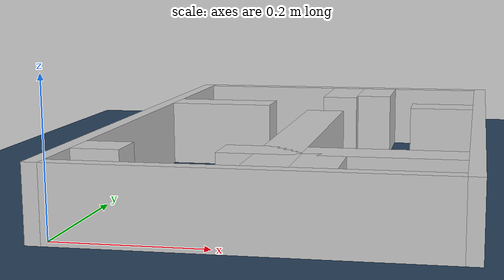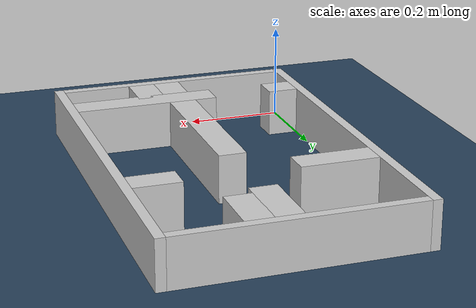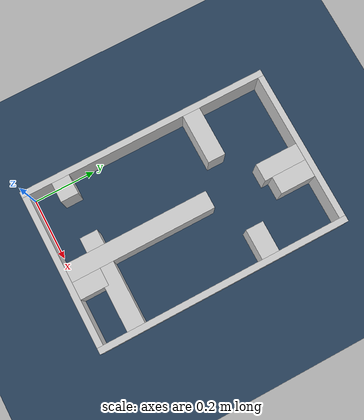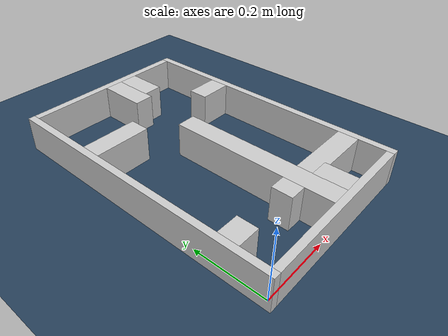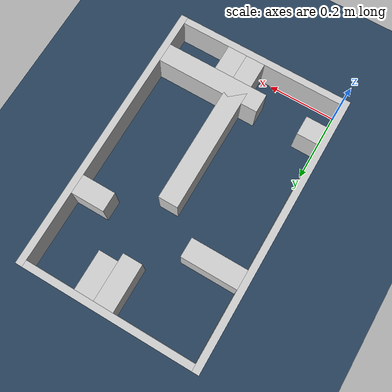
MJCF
<?xml version="1.0" ?>
<mujoco model="generated_real_template">
  <compiler angle="degree"/>
  <option timestep="0.002" integrator="implicitfast" iterations="100" cone="elliptic"/>
  <default>
    <geom density="1"/>
  </default>
  <asset>
    <texture builtin="gradient" height="3072" rgb1="0.3 0.5 0.7" rgb2="0 0 0" type="skybox" width="512"/>
    <texture builtin="checker" height="300" mark="edge" markrgb="0.8 0.8 0.8" name="groundplane" rgb1="0.2 0.3 0.4" rgb2="0.1 0.2 0.3" type="2d" width="300"/>
    <material name="groundplane" reflectance="0.2" texrepeat="5 5" texture="groundplane" texuniform="true"/>
  </asset>
  <worldbody>
    <light dir="0 0 -1" directional="true" pos="0 0 1.5"/>
    <geom name="floor" type="plane" condim="4" friction="0.5 0.005 0.001" material="groundplane" size="0 0 0.05"/>
    <body name="walls">
      <geom name="wall_boundary_left" type="box" condim="4" friction="1.0 0.005 0.0001" rgba="0.8 0.8 0.8 1" pos="-0.010000 0.387500 0.050000" euler="0 0 0.000000" size="0.010000 0.407500 0.050000"/>
      <geom name="wall_boundary_right" type="box" condim="4" friction="1.0 0.005 0.0001" rgba="0.8 0.8 0.8 1" pos="0.500000 0.387500 0.050000" euler="0 0 0.000000" size="0.010000 0.407500 0.050000"/>
      <geom name="wall_boundary_bottom" type="box" condim="4" friction="1.0 0.005 0.0001" rgba="0.8 0.8 0.8 1" pos="0.245000 -0.010000 0.050000" euler="0 0 0.000000" size="0.245000 0.010000 0.050000"/>
      <geom name="wall_boundary_top" type="box" condim="4" friction="1.0 0.005 0.0001" rgba="0.8 0.8 0.8 1" pos="0.245000 0.785000 0.050000" euler="0 0 0.000000" size="0.245000 0.010000 0.050000"/>
      <geom name="wall_inner_1_1" type="box" condim="4" friction="1.0 0.005 0.0001" rgba="0.8 0.8 0.8 1" pos="0.318242 0.045120 0.050000" euler="0 0 90.000000" size="0.045120 0.028500 0.050000"/>
      <geom name="wall_inner_1_2" type="box" condim="4" friction="1.0 0.005 0.0001" rgba="0.8 0.8 0.8 1" pos="0.318242 0.718150 0.050000" euler="0 0 90.000000" size="0.056850 0.028500 0.050000"/>
      <geom name="wall_inner_2_1" type="box" condim="4" friction="1.0 0.005 0.0001" rgba="0.8 0.8 0.8 1" pos="0.081227 0.544565 0.050000" euler="0 0 0.000000" size="0.081227 0.028500 0.050000"/>
      <geom name="wall_inner_2_2" type="box" condim="4" friction="1.0 0.005 0.0001" rgba="0.8 0.8 0.8 1" pos="0.441058 0.544565 0.050000" euler="0 0 0.000000" size="0.048942 0.028500 0.050000"/>
      <geom name="wall_inner_3_1" type="box" condim="4" friction="1.0 0.005 0.0001" rgba="0.8 0.8 0.8 1" pos="0.031885 0.104850 0.050000" euler="0 0 0.000000" size="0.031885 0.028500 0.050000"/>
      <geom name="wall_inner_3_2" type="box" condim="4" friction="1.0 0.005 0.0001" rgba="0.8 0.8 0.8 1" pos="0.338078 0.104850 0.050000" euler="0 0 0.000000" size="0.151922 0.028500 0.050000"/>
      <geom name="wall_inner_4_1" type="box" condim="4" friction="1.0 0.005 0.0001" rgba="0.8 0.8 0.8 1" pos="0.262187 0.234184 0.050000" euler="0 0 90.000000" size="0.234184 0.028500 0.050000"/>
      <geom name="wall_inner_4_2" type="box" condim="4" friction="1.0 0.005 0.0001" rgba="0.8 0.8 0.8 1" pos="0.262187 0.706251 0.050000" euler="0 0 90.000000" size="0.068749 0.028500 0.050000"/>
    </body>
  </worldbody>
</mujoco>
